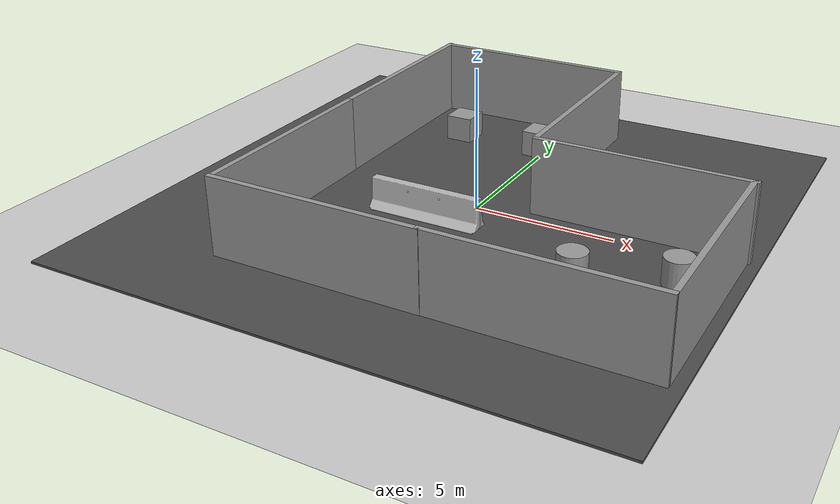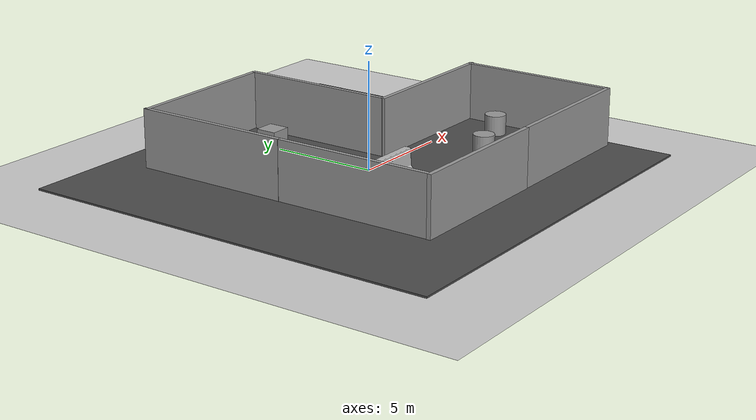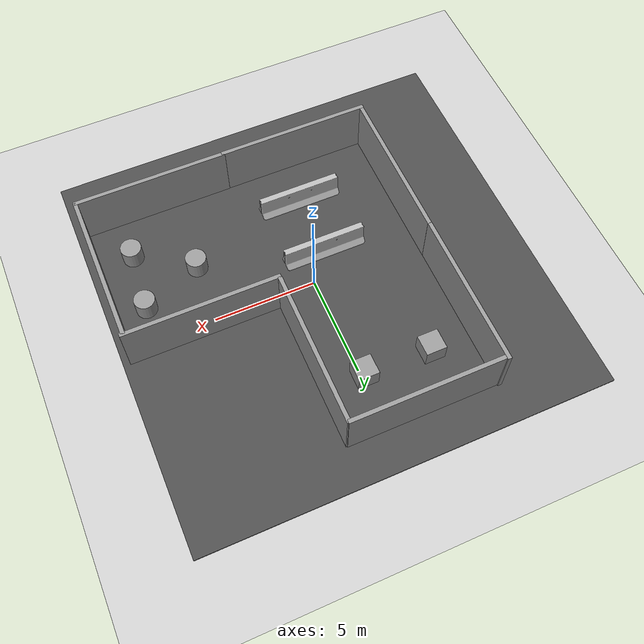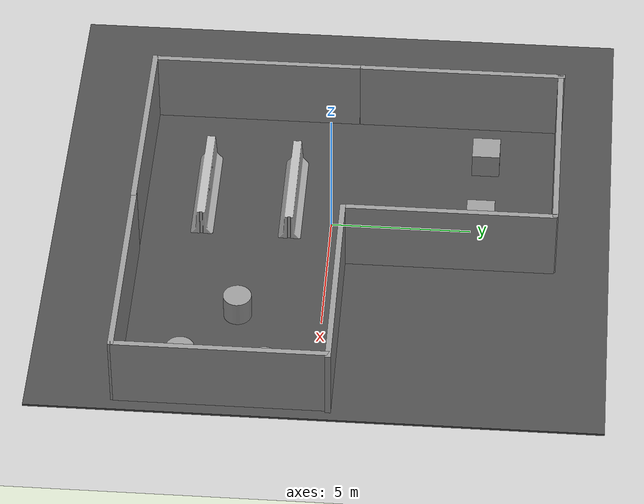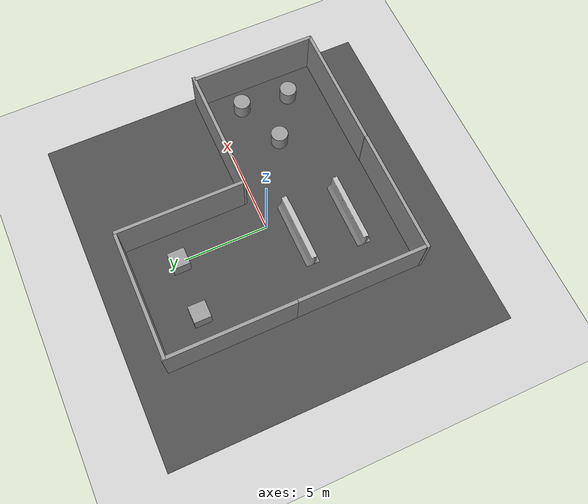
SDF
<sdf version="1.6">
 <world name="default">
  <light name="sun" type="directional">
   <pose>0 0 10 0 -0 0</pose>
   <diffuse>0.8 0.8 0.8 1</diffuse>
   <specular>0.2 0.2 0.2 1</specular>
   <attenuation>
    <range>1000</range>
    <constant>0.9</constant>
    <linear>0.01</linear>
    <quadratic>0.001</quadratic>
   </attenuation>
   <direction>-0.5 0.1 -0.9</direction>
  </light>
  <model name="ground_plane">
   <static>1</static>
   <link name="link">
    <collision name="collision">
     <geometry><plane><normal>0 0 1</normal><size>100 100</size></plane></geometry>
     <surface>
      <contact><collide_bitmask>65535</collide_bitmask></contact>
      <friction><ode><mu>100</mu><mu2>50</mu2></ode></friction>
     </surface>
    </collision>
    <visual name="visual">
     <cast_shadows>0</cast_shadows>
     <geometry><plane><normal>0 0 1</normal><size>100 100</size></plane></geometry>
     <material>
      <script><uri>file://media/materials/scripts/gazebo.material</uri><name>Gazebo/Grey</name></script>
     </material>
    </visual>
   </link>
  </model>
  <gravity>0 0 -9.8</gravity>
  <magnetic_field>6e-06 2.3e-05 -4.2e-05</magnetic_field>
  <atmosphere type="adiabatic"/>
  <physics name="default_physics" default="0" type="ode">
   <max_step_size>0.001</max_step_size>
   <real_time_factor>1</real_time_factor>
   <real_time_update_rate>1000</real_time_update_rate>
  </physics>
  <scene><ambient>0.4 0.4 0.4 1</ambient><background>0.7 0.7 0.7 1</background><shadows>1</shadows></scene>
  <audio><device>default</device></audio>
  <spherical_coordinates>
   <surface_model>EARTH_WGS84</surface_model>
   <latitude_deg>0</latitude_deg>
   <longitude_deg>0</longitude_deg>
   <elevation>0</elevation>
   <heading_deg>0</heading_deg>
  </spherical_coordinates>
  <model name="real">
   <link name="link_0">
    <inertial>
     <mass>1</mass>
     <inertia>
      <ixx>0.166667</ixx>
      <ixy>0</ixy>
      <ixz>0</ixz>
      <iyy>0.166667</iyy>
      <iyz>0</iyz>
      <izz>0.166667</izz>
     </inertia>
    </inertial>
    <pose>-4.73995 5.90235 0.34375 0 -0 0</pose>
    <visual name="visual">
     <geometry><box><size>1 1 1</size></box></geometry>
     <material>
      <lighting>1</lighting>
      <script><uri>file://media/materials/scripts/gazebo.material</uri><name>Gazebo/Grey</name></script>
     </material>
    </visual>
    <collision name="collision">
     <geometry><box><size>1 1 1</size></box></geometry>
     <surface>
      <friction>
       <ode><mu>1</mu><mu2>1</mu2><fdir1>0 0 0</fdir1><slip1>0</slip1><slip2>0</slip2></ode>
       <torsional>
        <coefficient>1</coefficient>
        <patch_radius>0</patch_radius>
        <surface_radius>0</surface_radius>
        <use_patch_radius>1</use_patch_radius>
        <ode><slip>0</slip></ode>
       </torsional>
      </friction>
      <bounce><restitution_coefficient>0</restitution_coefficient><threshold>1e+06</threshold></bounce>
      <contact>
       <collide_without_contact>0</collide_without_contact>
       <collide_without_contact_bitmask>1</collide_without_contact_bitmask>
       <collide_bitmask>1</collide_bitmask>
       <ode>
        <soft_cfm>0</soft_cfm>
        <soft_erp>0.2</soft_erp>
        <kp>1e+13</kp>
        <kd>1</kd>
        <max_vel>0.01</max_vel>
        <min_depth>0</min_depth>
       </ode>
       <bullet>
        <split_impulse>1</split_impulse>
        <split_impulse_penetration_threshold>-0.01</split_impulse_penetration_threshold>
        <soft_cfm>0</soft_cfm>
        <soft_erp>0.2</soft_erp>
        <kp>1e+13</kp>
        <kd>1</kd>
       </bullet>
      </contact>
     </surface>
    </collision>
   </link>
   <link name="link_1">
    <inertial>
     <mass>1</mass>
     <inertia>
      <ixx>0.166667</ixx>
      <ixy>0</ixy>
      <ixz>0</ixz>
      <iyy>0.166667</iyy>
      <iyz>0</iyz>
      <izz>0.166667</izz>
     </inertia>
    </inertial>
    <pose>-1.45504 5.82254 0.34375 0 -0 0</pose>
    <visual name="visual">
     <geometry><box><size>1 1 1</size></box></geometry>
     <material>
      <lighting>1</lighting>
      <script><uri>file://media/materials/scripts/gazebo.material</uri><name>Gazebo/Grey</name></script>
     </material>
    </visual>
    <collision name="collision">
     <geometry><box><size>1 1 1</size></box></geometry>
     <surface>
      <friction>
       <ode><mu>1</mu><mu2>1</mu2><fdir1>0 0 0</fdir1><slip1>0</slip1><slip2>0</slip2></ode>
       <torsional>
        <coefficient>1</coefficient>
        <patch_radius>0</patch_radius>
        <surface_radius>0</surface_radius>
        <use_patch_radius>1</use_patch_radius>
        <ode><slip>0</slip></ode>
       </torsional>
      </friction>
      <bounce><restitution_coefficient>0</restitution_coefficient><threshold>1e+06</threshold></bounce>
      <contact>
       <collide_without_contact>0</collide_without_contact>
       <collide_without_contact_bitmask>1</collide_without_contact_bitmask>
       <collide_bitmask>1</collide_bitmask>
       <ode>
        <soft_cfm>0</soft_cfm>
        <soft_erp>0.2</soft_erp>
        <kp>1e+13</kp>
        <kd>1</kd>
        <max_vel>0.01</max_vel>
        <min_depth>0</min_depth>
       </ode>
       <bullet>
        <split_impulse>1</split_impulse>
        <split_impulse_penetration_threshold>-0.01</split_impulse_penetration_threshold>
        <soft_cfm>0</soft_cfm>
        <soft_erp>0.2</soft_erp>
        <kp>1e+13</kp>
        <kd>1</kd>
       </bullet>
      </contact>
     </surface>
    </collision>
   </link>
   <link name="link_2">
    <inertial>
     <mass>1</mass>
     <inertia><ixx>0.145833</ixx><ixy>0</ixy><ixz>0</ixz><iyy>0.145833</iyy><iyz>0</iyz><izz>0.125</izz></inertia>
    </inertial>
    <pose>3.49074 -2.50567 0.34375 0 -0 0</pose>
    <visual name="visual">
     <geometry><cylinder><radius>0.5</radius><length>1</length></cylinder></geometry>
     <material>
      <lighting>1</lighting>
      <script><uri>file://media/materials/scripts/gazebo.material</uri><name>Gazebo/Grey</name></script>
     </material>
    </visual>
    <collision name="collision">
     <geometry><cylinder><radius>0.5</radius><length>1</length></cylinder></geometry>
     <surface>
      <friction>
       <ode><mu>1</mu><mu2>1</mu2><fdir1>0 0 0</fdir1><slip1>0</slip1><slip2>0</slip2></ode>
       <torsional>
        <coefficient>1</coefficient>
        <patch_radius>0</patch_radius>
        <surface_radius>0</surface_radius>
        <use_patch_radius>1</use_patch_radius>
        <ode><slip>0</slip></ode>
       </torsional>
      </friction>
      <bounce><restitution_coefficient>0</restitution_coefficient><threshold>1e+06</threshold></bounce>
      <contact>
       <collide_without_contact>0</collide_without_contact>
       <collide_without_contact_bitmask>1</collide_without_contact_bitmask>
       <collide_bitmask>1</collide_bitmask>
       <ode>
        <soft_cfm>0</soft_cfm>
        <soft_erp>0.2</soft_erp>
        <kp>1e+13</kp>
        <kd>1</kd>
        <max_vel>0.01</max_vel>
        <min_depth>0</min_depth>
       </ode>
       <bullet>
        <split_impulse>1</split_impulse>
        <split_impulse_penetration_threshold>-0.01</split_impulse_penetration_threshold>
        <soft_cfm>0</soft_cfm>
        <soft_erp>0.2</soft_erp>
        <kp>1e+13</kp>
        <kd>1</kd>
       </bullet>
      </contact>
     </surface>
    </collision>
   </link>
   <link name="link_3">
    <inertial>
     <mass>1</mass>
     <inertia><ixx>0.145833</ixx><ixy>0</ixy><ixz>0</ixz><iyy>0.145833</iyy><iyz>0</iyz><izz>0.125</izz></inertia>
    </inertial>
    <pose>6.41396 -1.33133 0.34375 0 -0 0</pose>
    <visual name="visual">
     <geometry><cylinder><radius>0.5</radius><length>1</length></cylinder></geometry>
     <material>
      <lighting>1</lighting>
      <script><uri>file://media/materials/scripts/gazebo.material</uri><name>Gazebo/Grey</name></script>
     </material>
    </visual>
    <collision name="collision">
     <geometry><cylinder><radius>0.5</radius><length>1</length></cylinder></geometry>
     <surface>
      <friction>
       <ode><mu>1</mu><mu2>1</mu2><fdir1>0 0 0</fdir1><slip1>0</slip1><slip2>0</slip2></ode>
       <torsional>
        <coefficient>1</coefficient>
        <patch_radius>0</patch_radius>
        <surface_radius>0</surface_radius>
        <use_patch_radius>1</use_patch_radius>
        <ode><slip>0</slip></ode>
       </torsional>
      </friction>
      <bounce><restitution_coefficient>0</restitution_coefficient><threshold>1e+06</threshold></bounce>
      <contact>
       <collide_without_contact>0</collide_without_contact>
       <collide_without_contact_bitmask>1</collide_without_contact_bitmask>
       <collide_bitmask>1</collide_bitmask>
       <ode>
        <soft_cfm>0</soft_cfm>
        <soft_erp>0.2</soft_erp>
        <kp>1e+13</kp>
        <kd>1</kd>
        <max_vel>0.01</max_vel>
        <min_depth>0</min_depth>
       </ode>
       <bullet>
        <split_impulse>1</split_impulse>
        <split_impulse_penetration_threshold>-0.01</split_impulse_penetration_threshold>
        <soft_cfm>0</soft_cfm>
        <soft_erp>0.2</soft_erp>
        <kp>1e+13</kp>
        <kd>1</kd>
       </bullet>
      </contact>
     </surface>
    </collision>
   </link>
   <link name="link_4">
    <inertial>
     <mass>1</mass>
     <inertia><ixx>0.145833</ixx><ixy>0</ixy><ixz>0</ixz><iyy>0.145833</iyy><iyz>0</iyz><izz>0.125</izz></inertia>
    </inertial>
    <pose>6.13021 -4.26081 0.34375 0 -0 0</pose>
    <visual name="visual">
     <geometry><cylinder><radius>0.5</radius><length>1</length></cylinder></geometry>
     <material>
      <lighting>1</lighting>
      <script><uri>file://media/materials/scripts/gazebo.material</uri><name>Gazebo/Grey</name></script>
     </material>
    </visual>
    <collision name="collision">
     <geometry><cylinder><radius>0.5</radius><length>1</length></cylinder></geometry>
     <surface>
      <friction>
       <ode><mu>1</mu><mu2>1</mu2><fdir1>0 0 0</fdir1><slip1>0</slip1><slip2>0</slip2></ode>
       <torsional>
        <coefficient>1</coefficient>
        <patch_radius>0</patch_radius>
        <surface_radius>0</surface_radius>
        <use_patch_radius>1</use_patch_radius>
        <ode><slip>0</slip></ode>
       </torsional>
      </friction>
      <bounce><restitution_coefficient>0</restitution_coefficient><threshold>1e+06</threshold></bounce>
      <contact>
       <collide_without_contact>0</collide_without_contact>
       <collide_without_contact_bitmask>1</collide_without_contact_bitmask>
       <collide_bitmask>1</collide_bitmask>
       <ode>
        <soft_cfm>0</soft_cfm>
        <soft_erp>0.2</soft_erp>
        <kp>1e+13</kp>
        <kd>1</kd>
        <max_vel>0.01</max_vel>
        <min_depth>0</min_depth>
       </ode>
       <bullet>
        <split_impulse>1</split_impulse>
        <split_impulse_penetration_threshold>-0.01</split_impulse_penetration_threshold>
        <soft_cfm>0</soft_cfm>
        <soft_erp>0.2</soft_erp>
        <kp>1e+13</kp>
        <kd>1</kd>
       </bullet>
      </contact>
     </surface>
    </collision>
   </link>
   <model name="asphalt_plane">
    <static>1</static>
    <link name="link">
     <collision name="collision"><geometry><box><size>20 20 0.1</size></box></geometry></collision>
     <visual name="visual">
      <cast_shadows>0</cast_shadows>
      <geometry><box><size>20 20 0.1</size></box></geometry>
      <material>
       <script>
        <uri>model://asphalt_plane/materials/scripts</uri>
        <uri>model://asphalt_plane/materials/textures</uri>
        <name>vrc/asphalt</name>
       </script>
      </material>
     </visual>
    </link>
    <pose>-1.67487 0.488104 -0.15625 0 -0 0</pose>
   </model>
   <model name="grey_wall">
    <static>1</static>
    <link name="link">
     <pose>0 0 1.4 0 -0 0</pose>
     <collision name="collision"><geometry><box><size>7.5 0.2 2.8</size></box></geometry></collision>
     <visual name="visual">
      <cast_shadows>0</cast_shadows>
      <geometry><box><size>7.5 0.2 2.8</size></box></geometry>
      <material>
       <script>
        <uri>model://grey_wall/materials/scripts</uri>
        <uri>model://grey_wall/materials/textures</uri>
        <name>vrc/grey_wall</name>
       </script>
      </material>
     </visual>
    </link>
    <pose>4.15587 -6.40701 -0.15625 0 -0 0</pose>
   </model>
   <model name="grey_wall_0">
    <static>1</static>
    <link name="link">
     <pose>0 0 1.4 0 -0 0</pose>
     <collision name="collision"><geometry><box><size>7.5 0.2 2.8</size></box></geometry></collision>
     <visual name="visual">
      <cast_shadows>0</cast_shadows>
      <geometry><box><size>7.5 0.2 2.8</size></box></geometry>
      <material>
       <script>
        <uri>model://grey_wall/materials/scripts</uri>
        <uri>model://grey_wall/materials/textures</uri>
        <name>vrc/grey_wall</name>
       </script>
      </material>
     </visual>
    </link>
    <pose>-3.19613 -6.42358 -0.15625 0 -0 0</pose>
   </model>
   <model name="grey_wall_1">
    <static>1</static>
    <link name="link">
     <pose>0 0 1.4 0 -0 0</pose>
     <collision name="collision"><geometry><box><size>7.5 0.2 2.8</size></box></geometry></collision>
     <visual name="visual">
      <cast_shadows>0</cast_shadows>
      <geometry><box><size>7.5 0.2 2.8</size></box></geometry>
      <material>
       <script>
        <uri>model://grey_wall/materials/scripts</uri>
        <uri>model://grey_wall/materials/textures</uri>
        <name>vrc/grey_wall</name>
       </script>
      </material>
     </visual>
    </link>
    <pose>-6.82675 -2.61148 -0.15625 0 0 -1.57074</pose>
   </model>
   <model name="grey_wall_1_clone">
    <static>1</static>
    <link name="link">
     <pose>0 0 1.4 0 -0 0</pose>
     <collision name="collision"><geometry><box><size>7.5 0.2 2.8</size></box></geometry></collision>
     <visual name="visual">
      <cast_shadows>0</cast_shadows>
      <geometry><box><size>7.5 0.2 2.8</size></box></geometry>
      <material>
       <script>
        <uri>model://grey_wall/materials/scripts</uri>
        <uri>model://grey_wall/materials/textures</uri>
        <name>vrc/grey_wall</name>
       </script>
      </material>
     </visual>
    </link>
    <pose>-6.83186 4.89099 -0.15625 0 0 -1.57074</pose>
   </model>
   <model name="grey_wall_1_clone_0">
    <static>1</static>
    <link name="link">
     <pose>0 0 1.4 0 -0 0</pose>
     <collision name="collision"><geometry><box><size>7.5 0.2 2.8</size></box></geometry></collision>
     <visual name="visual">
      <cast_shadows>0</cast_shadows>
      <geometry><box><size>7.5 0.2 2.8</size></box></geometry>
      <material>
       <script>
        <uri>model://grey_wall/materials/scripts</uri>
        <uri>model://grey_wall/materials/textures</uri>
        <name>vrc/grey_wall</name>
       </script>
      </material>
     </visual>
    </link>
    <pose>0.573634 4.79652 -0.15625 0 0 -1.57074</pose>
   </model>
   <model name="grey_wall_1_clone_1">
    <static>1</static>
    <link name="link">
     <pose>0 0 1.4 0 -0 0</pose>
     <collision name="collision"><geometry><box><size>7.5 0.2 2.8</size></box></geometry></collision>
     <visual name="visual">
      <cast_shadows>0</cast_shadows>
      <geometry><box><size>7.5 0.2 2.8</size></box></geometry>
      <material>
       <script>
        <uri>model://grey_wall/materials/scripts</uri>
        <uri>model://grey_wall/materials/textures</uri>
        <name>vrc/grey_wall</name>
       </script>
      </material>
     </visual>
    </link>
    <pose>7.82016 -2.67255 -0.15625 0 0 -1.57074</pose>
   </model>
   <model name="grey_wall_2">
    <static>1</static>
    <link name="link">
     <pose>0 0 1.4 0 -0 0</pose>
     <collision name="collision"><geometry><box><size>7.5 0.2 2.8</size></box></geometry></collision>
     <visual name="visual">
      <cast_shadows>0</cast_shadows>
      <geometry><box><size>7.5 0.2 2.8</size></box></geometry>
      <material>
       <script>
        <uri>model://grey_wall/materials/scripts</uri>
        <uri>model://grey_wall/materials/textures</uri>
        <name>vrc/grey_wall</name>
       </script>
      </material>
     </visual>
    </link>
    <pose>-3.13557 8.4886 -0.15625 0 -0 0</pose>
   </model>
   <model name="grey_wall_3">
    <static>1</static>
    <link name="link">
     <pose>0 0 1.4 0 -0 0</pose>
     <collision name="collision"><geometry><box><size>7.5 0.2 2.8</size></box></geometry></collision>
     <visual name="visual">
      <cast_shadows>0</cast_shadows>
      <geometry><box><size>7.5 0.2 2.8</size></box></geometry>
      <material>
       <script>
        <uri>model://grey_wall/materials/scripts</uri>
        <uri>model://grey_wall/materials/textures</uri>
        <name>vrc/grey_wall</name>
       </script>
      </material>
     </visual>
    </link>
    <pose>4.24432 0.995702 -0.15625 0 -0 0</pose>
   </model>
   <model name="jersey_barrier">
    <static>1</static>
    <link name="link">
     <visual name="visual">
      <geometry><mesh><uri>model://jersey_barrier/meshes/jersey_barrier.dae</uri></mesh></geometry>
     </visual>
     <collision name="upright">
      <pose>0 0 0.5715 0 -0 0</pose>
      <geometry><box><size>4.06542 0.3063 1.143</size></box></geometry>
     </collision>
     <collision name="base">
      <pose>0 0 0.032258 0 -0 0</pose>
      <geometry><box><size>4.06542 0.8107 0.064516</size></box></geometry>
     </collision>
     <collision name="base2">
      <pose>0 0 0.1 0 -0 0</pose>
      <geometry><box><size>4.06542 0.65 0.1</size></box></geometry>
     </collision>
     <collision name="base3">
      <pose>0 0 0.2 0 -0 0</pose>
      <geometry><box><size>4.06542 0.5 0.1</size></box></geometry>
     </collision>
     <collision name="left-angle">
      <pose>0 -0.224 0.2401 0.9 -0 0</pose>
      <geometry><box><size>4.06542 0.5 0.064516</size></box></geometry>
     </collision>
     <collision name="right-angle">
      <pose>0 0.224 0.2401 -0.9 0 0</pose>
      <geometry><box><size>4.06542 0.5 0.064516</size></box></geometry>
     </collision>
    </link>
    <pose>-2.50419 -4.17 -0.15625 0 -0 0</pose>
   </model>
   <model name="jersey_barrier_0">
    <static>1</static>
    <link name="link">
     <visual name="visual">
      <geometry><mesh><uri>model://jersey_barrier/meshes/jersey_barrier.dae</uri></mesh></geometry>
     </visual>
     <collision name="upright">
      <pose>0 0 0.5715 0 -0 0</pose>
      <geometry><box><size>4.06542 0.3063 1.143</size></box></geometry>
     </collision>
     <collision name="base">
      <pose>0 0 0.032258 0 -0 0</pose>
      <geometry><box><size>4.06542 0.8107 0.064516</size></box></geometry>
     </collision>
     <collision name="base2">
      <pose>0 0 0.1 0 -0 0</pose>
      <geometry><box><size>4.06542 0.65 0.1</size></box></geometry>
     </collision>
     <collision name="base3">
      <pose>0 0 0.2 0 -0 0</pose>
      <geometry><box><size>4.06542 0.5 0.1</size></box></geometry>
     </collision>
     <collision name="left-angle">
      <pose>0 -0.224 0.2401 0.9 -0 0</pose>
      <geometry><box><size>4.06542 0.5 0.064516</size></box></geometry>
     </collision>
     <collision name="right-angle">
      <pose>0 0.224 0.2401 -0.9 0 0</pose>
      <geometry><box><size>4.06542 0.5 0.064516</size></box></geometry>
     </collision>
    </link>
    <pose>-2.46453 -1.00239 -0.15625 0 -0 0</pose>
   </model>
   <static>0</static>
   <pose>1.32181 -0.468847 0.15625 0 -0 0</pose>
  </model>
 </world>
</sdf>
